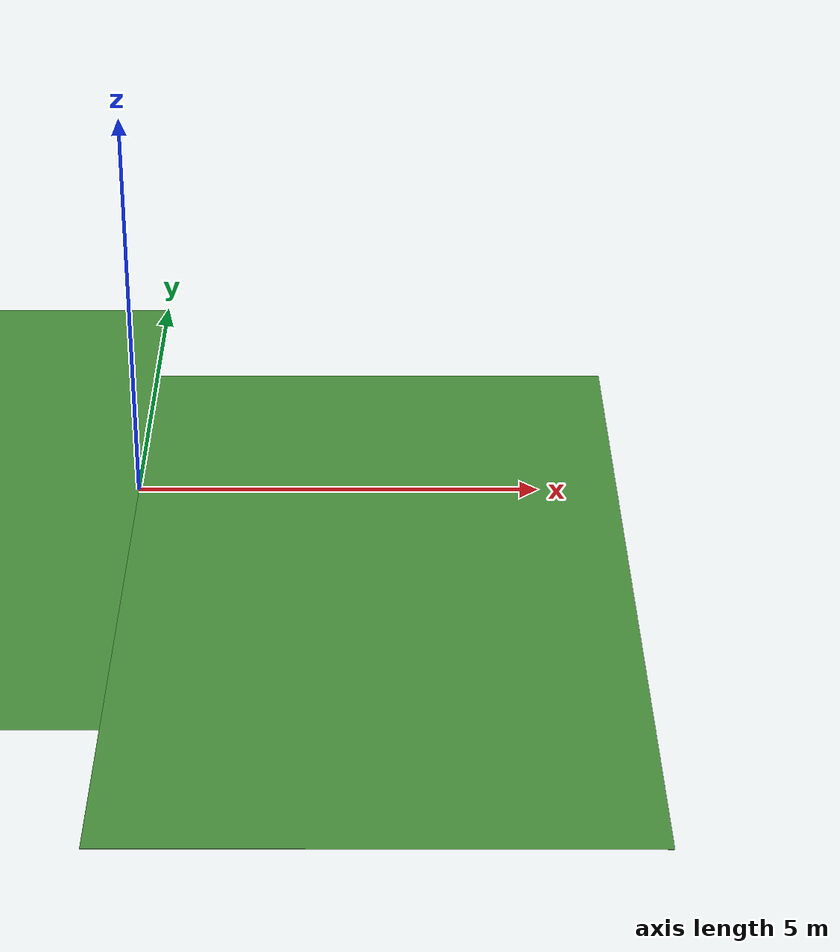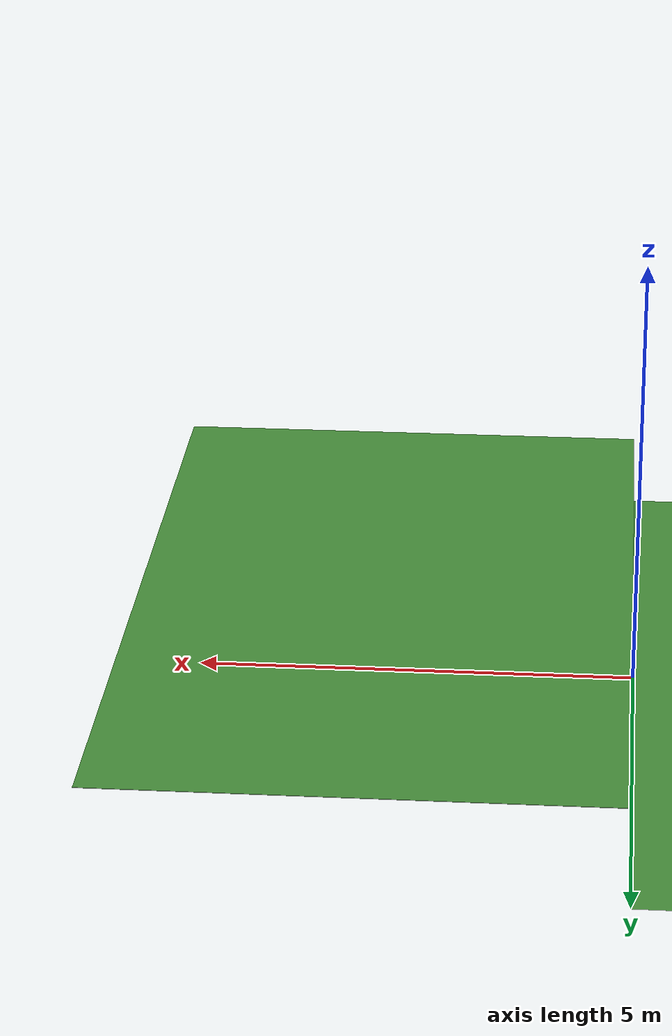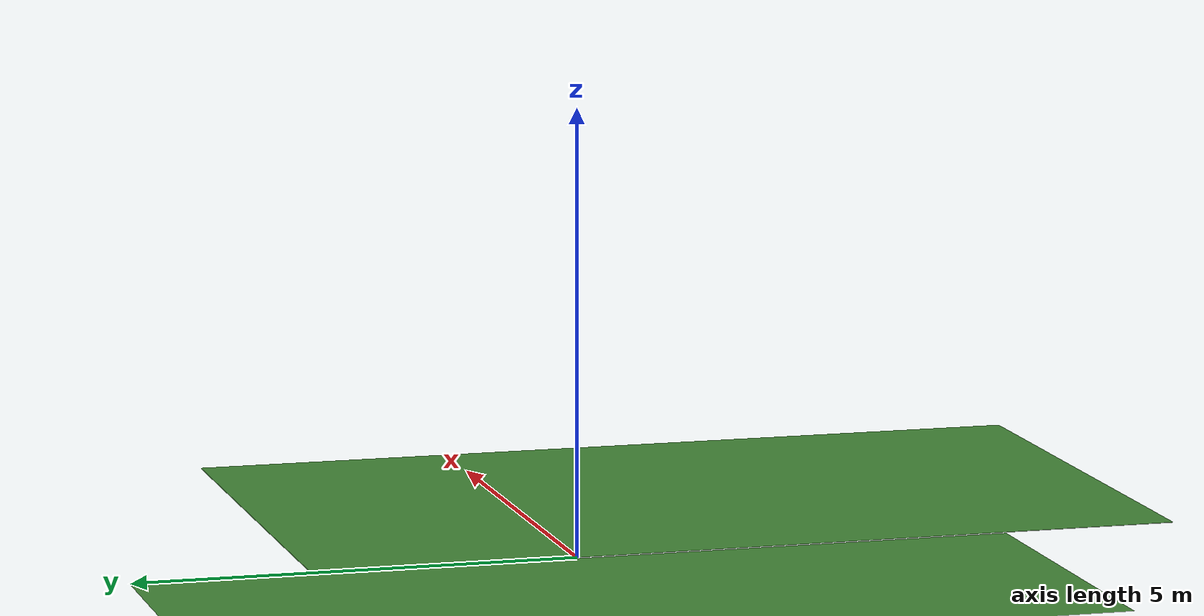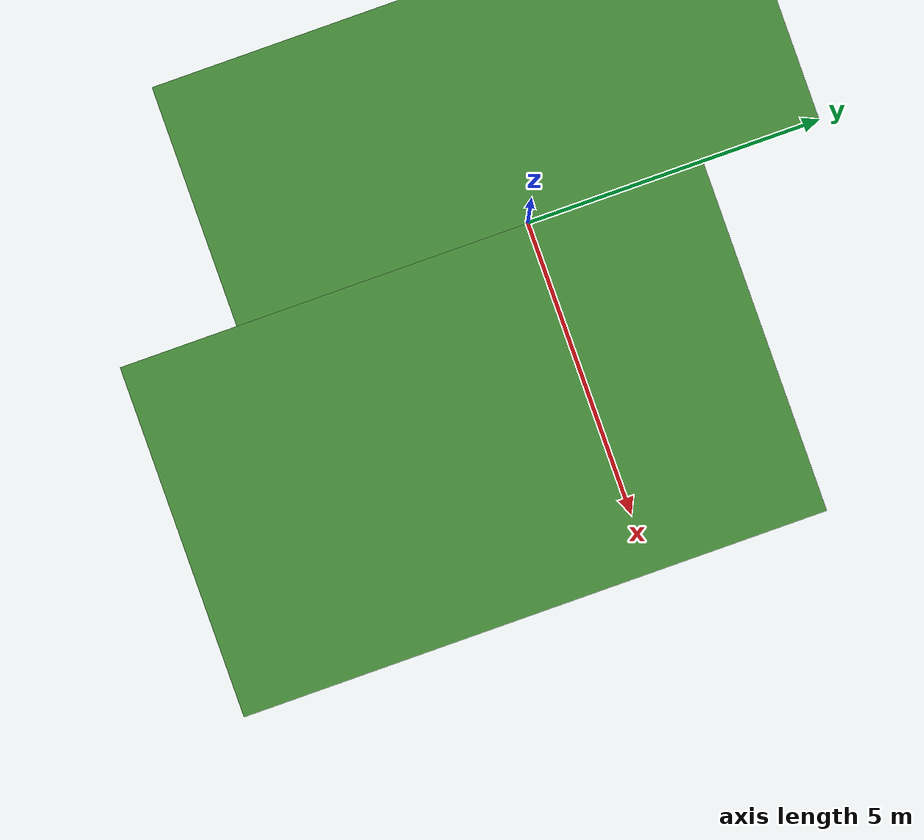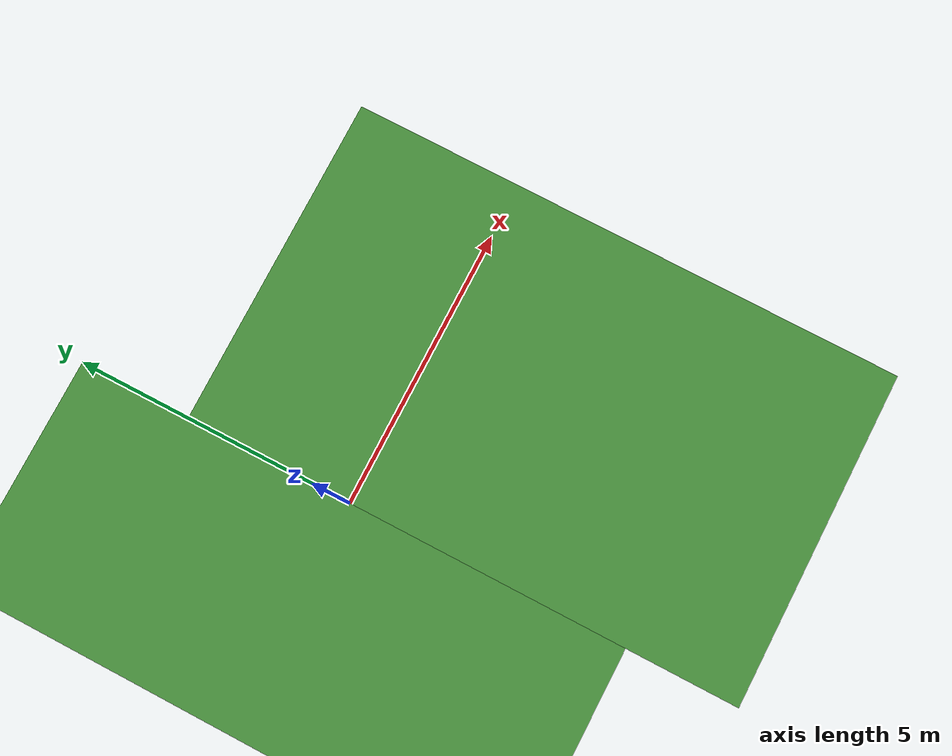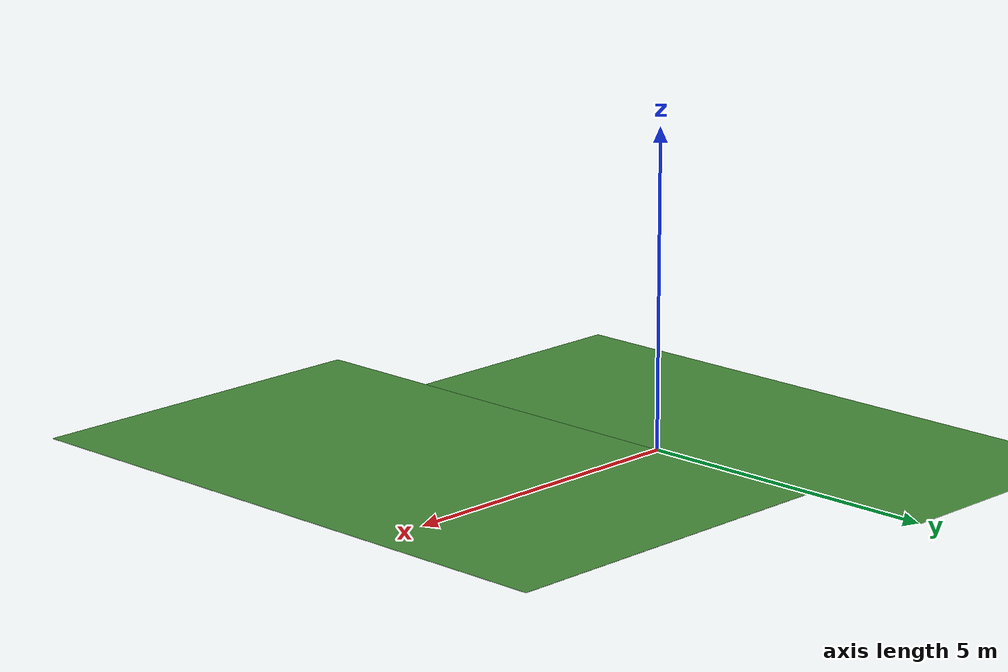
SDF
<?xml version="1.0"?>
<sdf version="1.5">
<model name="garden">
  <static>true</static>
    <link name="link">

	  <!-- TODO: Get own image for texture and figure out how to generate arbitrarily shaped environments -->

	  <!-- Define first a large collision plane -->
      <collision name="collision">
        <geometry>
          <plane>
            <normal>0 0 1</normal>
            <size>100 100</size>
          </plane>
        </geometry>
        <surface>
          <friction>
            <ode>
              <mu>100</mu>
              <mu2>50</mu2>
            </ode>
          </friction>
        </surface>
      </collision>

      <!-- Now we define the visuals -->
      <visual name="visual_0">
		<pose>-3 0 0 0 0 0</pose>
        <cast_shadows>false</cast_shadows>
        <geometry>
          <plane>
            <normal>0 0 1</normal>
            <size>6 10</size>
          </plane>
        </geometry>
        <material>
		  <script>
		    <uri>model://garden/materials/scripts</uri>
		    <uri>model://garden/materials/textures</uri>
		    <name>vrc/cut_grass</name>
		  </script>
        </material>
      </visual>

      <visual name="visual_1">
		<pose>3 -2 0 0 0 0</pose>
        <cast_shadows>false</cast_shadows>
        <geometry>
          <plane>
            <normal>0 0 1</normal>
            <size>6 10</size>
          </plane>
        </geometry>
        <material>
		  <script>
		    <uri>model://garden/materials/scripts</uri>
		    <uri>model://garden/materials/textures</uri>
		    <name>vrc/uncut_grass</name>
		  </script>
        </material>
      </visual>

    </link>
  </model>
</sdf>
